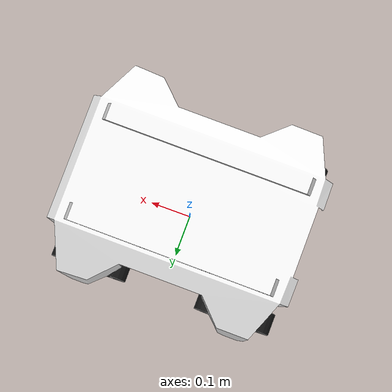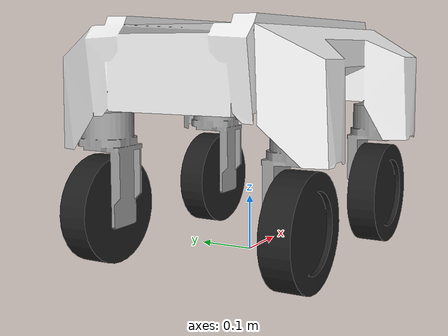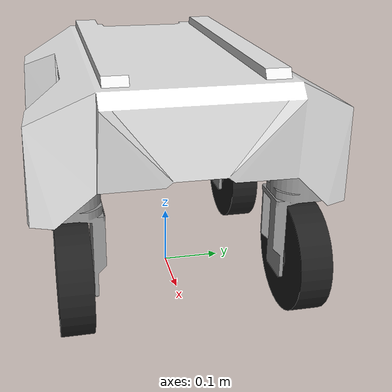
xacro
<?xml version="1.0"?>
<!-- Top-level file for generating the platform -->

<robot name="swerve_robot" xmlns:xacro="http://www.ros.org/wiki/xacro">

    <xacro:arg name="sim" default="false" />
    <xacro:property name="sim" value="$(arg sim)" />

    <!-- Import swerve robot (without any payload) -->
    <xacro:include filename="$(find swerve_robot_description)/urdf/include/swerve_robot_base.xacro" />
    <xacro:swerve_robot_base />

    <xacro:if value="${sim}">
        <!-- Import gazebo ros2 control plugin -->
        <xacro:include filename="$(find swerve_robot_description)/urdf/include/swerve_ros2_control.xacro" />
        <xacro:swerve_gazebo_ros2_control />
    </xacro:if>

    <!-- Import sensor payload xacro file here-->

</robot>

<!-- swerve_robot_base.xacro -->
<!-- Top-level file for generating the swerve drive robot -->

<robot xmlns:xacro="http://www.ros.org/wiki/xacro">

  <xacro:macro name="swerve_robot_base">
    <!-- MACRO FILES, ALLOW FOR GENERATION OF THE VARIOUS PARTS-->

    <!-- Import chassis and dummy base link-->
    <xacro:include filename="$(find swerve_robot_description)/urdf/include/robot_parts/chassis.xacro" />

    <!-- Import steering links and joints -->
    <xacro:include filename="$(find swerve_robot_description)/urdf/include/robot_parts/steering.xacro" />

    <!-- Import wheel links and joints -->
    <xacro:include filename="$(find swerve_robot_description)/urdf/include/robot_parts/wheel.xacro" />

    <!-- GENERATION, GENERATES THE ROBOT FROM MACROS -->

    <!-- Main chassis + dummy base link -->
    <xacro:base name="base_link" />
    <xacro:chassis name="chassis_link" parent="base_link" />

    <!-- Steering Links + Joints -->
    <xacro:steering locationprefix="front_right" locx="0.18" locy="-0.18" />
    <xacro:steering locationprefix="front_left" locx="0.18" locy="0.18" />
    <xacro:steering locationprefix="rear_left" locx="-0.18" locy="0.18" />
    <xacro:steering locationprefix="rear_right" locx="-0.18" locy="-0.18" />

    <!-- Wheel Links + Joints -->
    <xacro:wheel locationprefix="front_right" />
    <xacro:wheel locationprefix="front_left" />
    <xacro:wheel locationprefix="rear_left" />
    <xacro:wheel locationprefix="rear_right" />

  </xacro:macro>

</robot>

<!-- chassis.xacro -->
<robot xmlns:xacro="http://www.ros.org/wiki/xacro">

  <!-- Dummy base link, THIS IS REQUIRED TO MAKE INERTIALS WORK PROPERLY, NO INERTIALS ON ROOT LINK EVER -->

  <xacro:macro name="base" params="name">

    <!-- Root link of model tree -->
    <link name="${name}" />

  </xacro:macro>

  <!-- Robot Body-->
  <xacro:macro name="chassis" params="name parent">

    <link name="${name}">
      <inertial>
        <origin xyz="0 5.21904025701792E-05 0.108402855968814" rpy="0 0 0" />
        <mass value="1.78446713847014" />
        <inertia ixx="0.114563750887795" ixy="1.00505607229726E-06" ixz="-0.00308015585160256" iyy="0.25640701981465" iyz="-1.26769813175445E-06" izz="0.33939943437936" />
      </inertial>
      <visual>
        <origin xyz="0 0 0" rpy="0 0 0" />
        <geometry>
          <mesh filename="file://$(find swerve_robot_description)/meshes/base_link.dae" />
        </geometry>
      </visual>
      <collision>
        <origin xyz="0 0 0" rpy="0 0 0" />
        <geometry>
          <mesh filename="file://$(find swerve_robot_description)/meshes/base_link.dae" />
        </geometry>
      </collision>
    </link>

    <joint name="body_joint" type="fixed">
      <parent link="${parent}" />
      <child link="${name}" />
    </joint>

    <gazebo reference="${name}">
      <material>Gazebo/White</material>
    </gazebo>

  </xacro:macro>

</robot>

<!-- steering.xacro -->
<robot xmlns:xacro="http://www.ros.org/wiki/xacro">

  <!-- Steering Link + Joint -->
  <xacro:macro name="steering" params="locationprefix locx locy">
    <link name="${locationprefix}_steering_link">
      <inertial>
        <origin xyz="0.0 0.0 0.060941" rpy="0 0 0" />
        <mass value="0.030421" />
        <inertia ixx="0.00022406" ixy="-5.3036E-09" ixz="-1.2289E-08" iyy="0.00021285" iyz="-2.5969E-08" izz="0.00027948" />
      </inertial>
      <visual>
        <origin xyz="0 0 0" rpy="0 0 0" />
        <geometry>
          <mesh filename="file://$(find swerve_robot_description)/meshes/${locationprefix}_steering_link.dae" />
        </geometry>
      </visual>
      <collision>
        <origin xyz="0 0 0" rpy="0 0 0" />
        <geometry>
          <mesh filename="file://$(find swerve_robot_description)/meshes/${locationprefix}_steering_link.dae" />
        </geometry>
      </collision>
    </link>

    <gazebo reference="${locationprefix}_steering_link">
      <material>Gazebo/Grey</material>
    </gazebo>

    <joint name="steering_${locationprefix}_joint" type="revolute">
      <origin xyz="${locx} ${locy} 0.0" rpy="0 0 0" />
      <parent link="chassis_link" />
      <child link="${locationprefix}_steering_link" />
      <axis xyz="0 0 1" />
      <limit effort="20" velocity="6.28" lower="-2.1" upper="2.1" />
    </joint>

  </xacro:macro>

</robot>

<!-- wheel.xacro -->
<robot xmlns:xacro="http://www.ros.org/wiki/xacro">

  <!-- Wheel Link + Joint -->
  <xacro:macro name="wheel" params="locationprefix">

    <link name="${locationprefix}_wheel_link">
      <inertial>
        <origin xyz="-0.0016559 2.498E-05 -1.1185E-05" rpy="0 0 0" />
        <mass value="0.11363" />
        <inertia ixx="0.0049366" ixy="-9.2744E-07" ixz="2.0492E-07" iyy="0.002578" iyz="9.052E-08" izz="0.0025791" />
      </inertial>
      <visual>
        <origin xyz="0 0 0" rpy="0 0 0" />
        <geometry>
          <mesh filename="file://$(find swerve_robot_description)/meshes/${locationprefix}_wheel_link.dae" />
        </geometry>
      </visual>
      <collision>
        <origin xyz="0 0 0" rpy="0 0 0" />
        <geometry>
          <mesh filename="file://$(find swerve_robot_description)/meshes/${locationprefix}_wheel_link.dae" />
        </geometry>
      </collision>
    </link>

    <gazebo reference="${locationprefix}_wheel_link">
      <material>Gazebo/Black</material>
    </gazebo>

    <joint name="wheel_${locationprefix}_joint" type="continuous">
      <origin xyz="0.0 0.0 0.093" rpy="0 0 0" />
      <parent link="${locationprefix}_steering_link" />
      <child link="${locationprefix}_wheel_link" />
      <axis xyz="0 1 0" />
      <limit effort="1.0" velocity="27" />
    </joint>

  </xacro:macro>

</robot>
